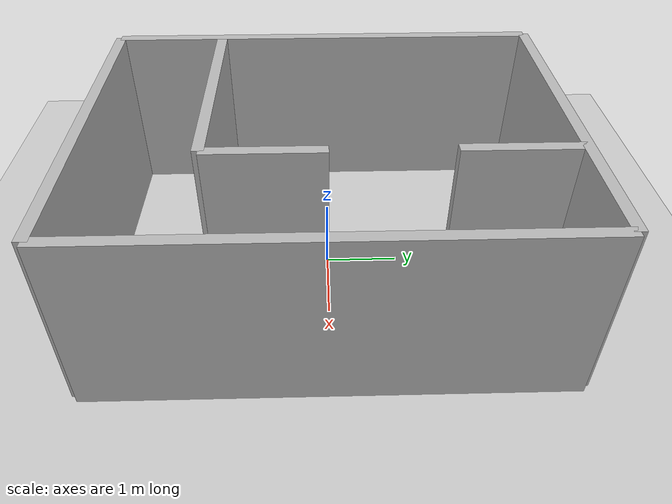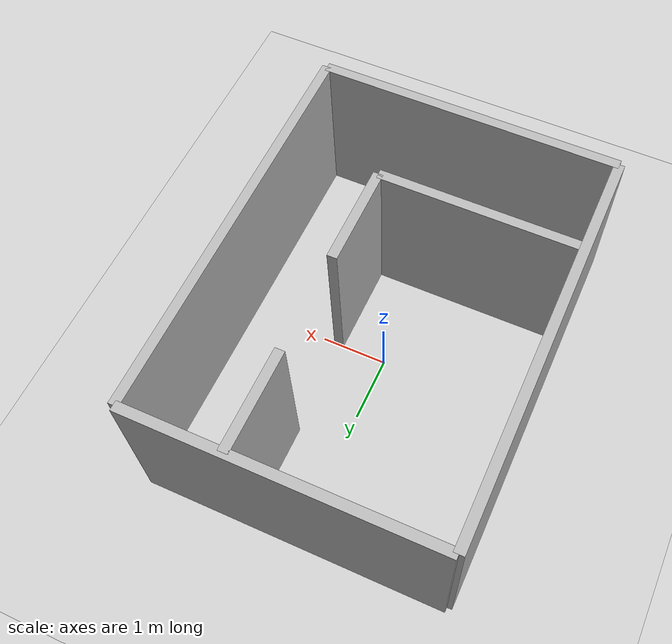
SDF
<?xml version="1.0" ?>
<sdf version="1.7">
  <world name="project1_world">

    <!-- Directional Light -->
    <light type="directional" name="sun">
      <cast_shadows>true</cast_shadows>
      <pose>0 0 10 0 0 0</pose>
      <diffuse>0.8 0.8 0.8 1</diffuse>
      <specular>0.2 0.2 0.2 1</specular>
      <direction>-0.5 0.1 -0.9</direction>
    </light>

    <!-- Ground Plane -->
    <model name="ground_plane">
      <static>true</static>
      <link name="link">
        <collision name="collision">
          <geometry><plane><normal>0 0 1</normal><size>100 100</size></plane></geometry>
        </collision>
        <visual name="visual">
          <geometry><plane><normal>0 0 1</normal><size>100 100</size></plane></geometry>
          <material><ambient>0.8 0.8 0.8 1</ambient><diffuse>0.8 0.8 0.8 1</diffuse></material>
        </visual>
      </link>
    </model>

    <!-- Environment Geometry with Properly Connected Inner Walls -->
    <model name="project1_environment">
      <static>true</static>

      <!-- 1. Outer Bounding Wall - North / Top (15ft / 4.572m) -->
      <link name="wall_outer_north">
        <pose>0 3.048 1.25 0 0 0</pose>
        <collision name="col"><geometry><box><size>4.572 0.15 2.5</size></box></geometry></collision>
        <visual name="vis"><geometry><box><size>4.572 0.15 2.5</size></box></geometry></visual>
      </link>

      <!-- 2. Outer Bounding Wall - South / Bottom (15ft / 4.572m) -->
      <link name="wall_outer_south">
        <pose>0 -3.048 1.25 0 0 0</pose>
        <collision name="col"><geometry><box><size>4.572 0.15 2.5</size></box></geometry></collision>
        <visual name="vis"><geometry><box><size>4.572 0.15 2.5</size></box></geometry></visual>
      </link>

      <!-- 3. Outer Bounding Wall - West / Left (20ft / 6.096m) -->
      <link name="wall_outer_west">
        <pose>-2.286 0 1.25 0 0 0</pose>
        <collision name="col"><geometry><box><size>0.15 6.096 2.5</size></box></geometry></collision>
        <visual name="vis"><geometry><box><size>0.15 6.096 2.5</size></box></geometry></visual>
      </link>

      <!-- 4. Outer Bounding Wall - East / Right (20ft / 6.096m) -->
      <link name="wall_outer_east">
        <pose>2.286 0 1.25 0 0 0</pose>
        <collision name="col"><geometry><box><size>0.15 6.096 2.5</size></box></geometry></collision>
        <visual name="vis"><geometry><box><size>0.15 6.096 2.5</size></box></geometry></visual>
      </link>

      <link name="wall_inner_vertical_top">
        <pose>0.762 2.286 1.25 0 0 0</pose>
        <collision name="col"><geometry><box><size>0.15 1.524 2.5</size></box></geometry></collision>
        <visual name="vis"><geometry><box><size>0.15 1.524 2.5</size></box></geometry></visual>
      </link>

      <link name="wall_inner_south_bottom">
        <pose>-0.762 -1.524 1.25 0 0 0</pose>
        <collision name="col"><geometry><box><size>3.048 0.15 2.5</size></box></geometry></collision>
        <visual name="vis"><geometry><box><size>3.048 0.15 2.5</size></box></geometry></visual>
      </link>

      <link name="wall_inner_vertical_bottom">
        <pose>0.762 -0.762 1.25 0 0 0</pose>
        <collision name="col"><geometry><box><size>0.15 1.524 2.5</size></box></geometry></collision>
        <visual name="vis"><geometry><box><size>0.15 1.524 2.5</size></box></geometry></visual>
      </link>

    </model>

  </world>
</sdf>
